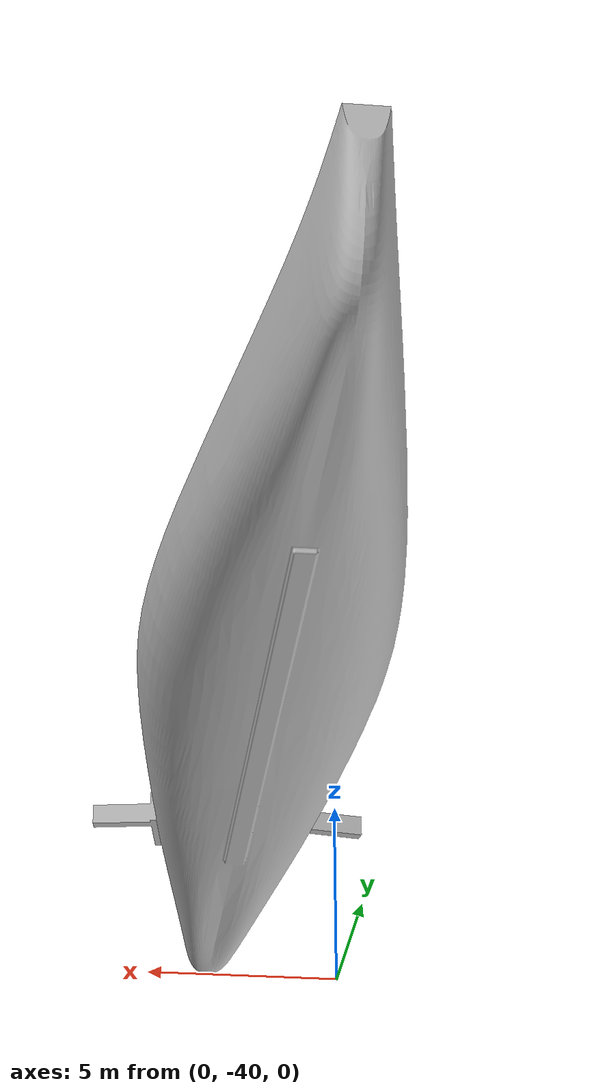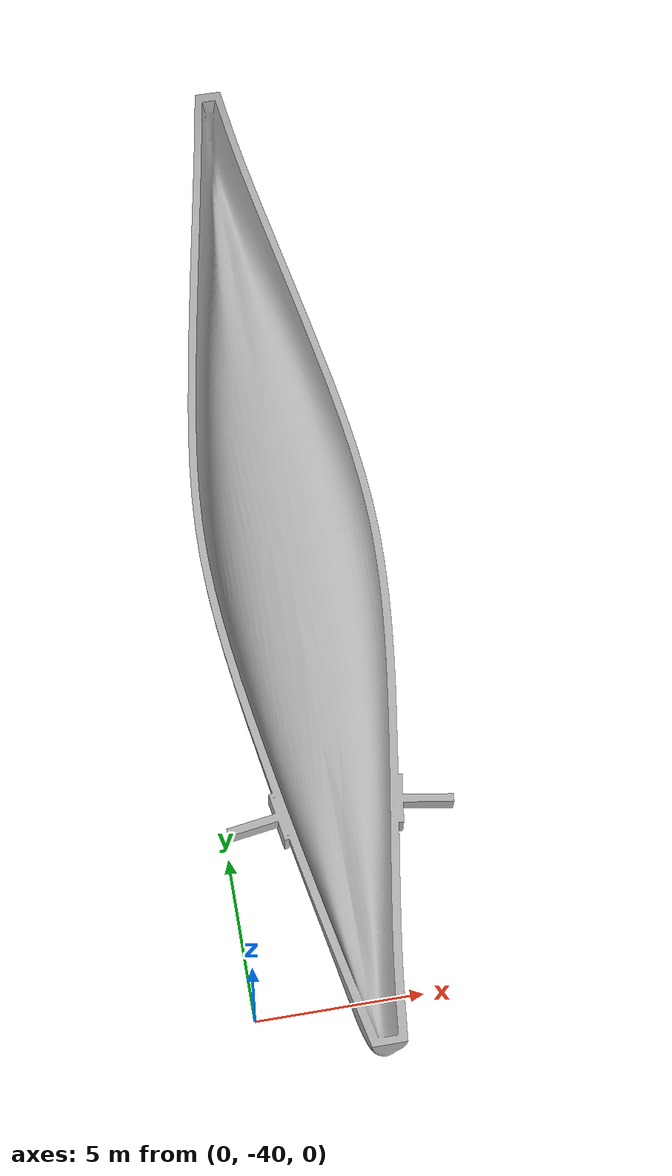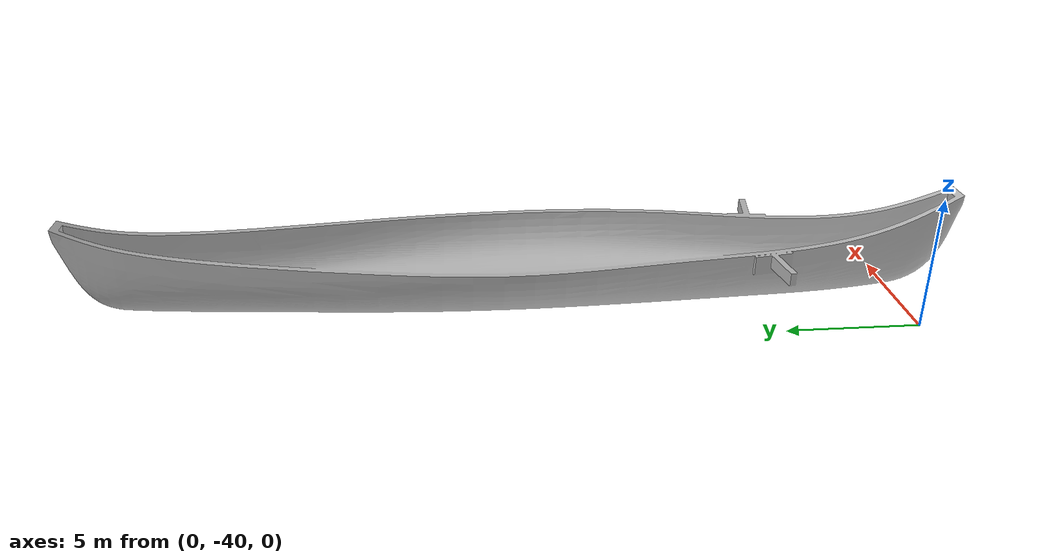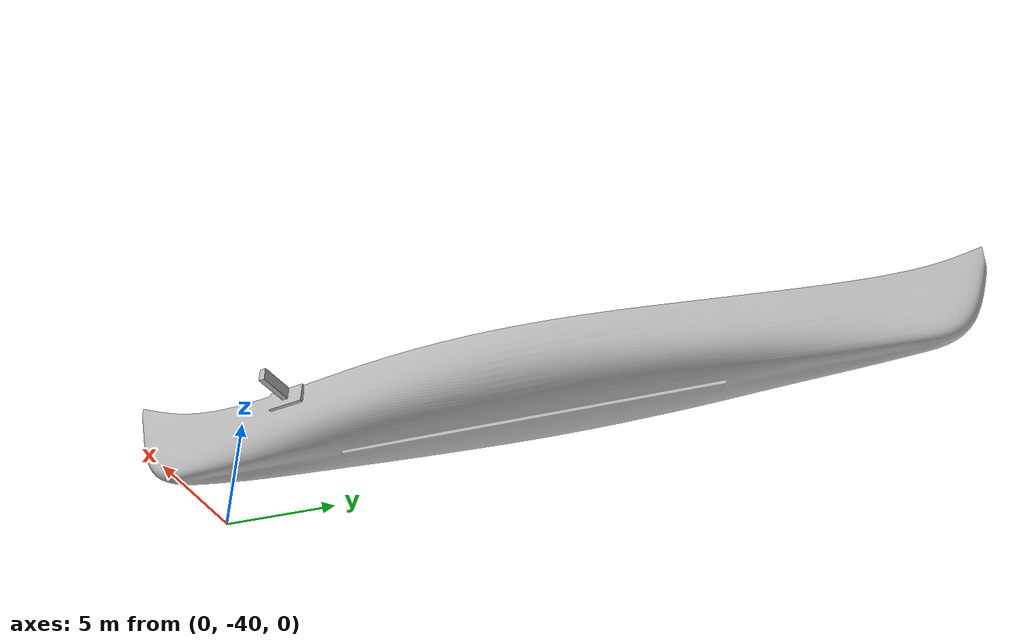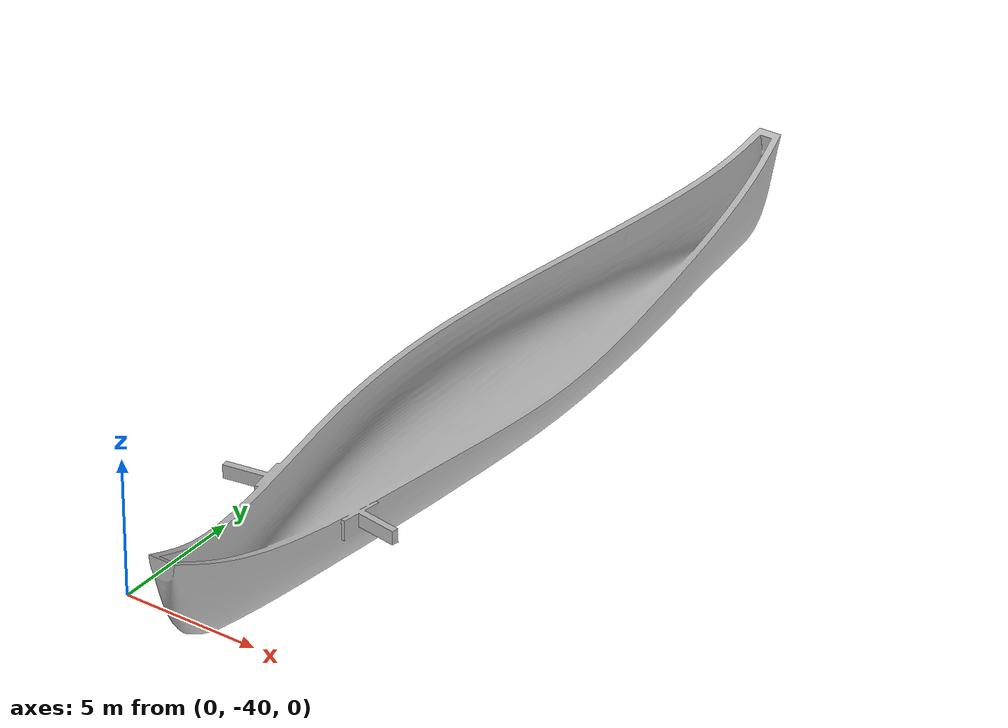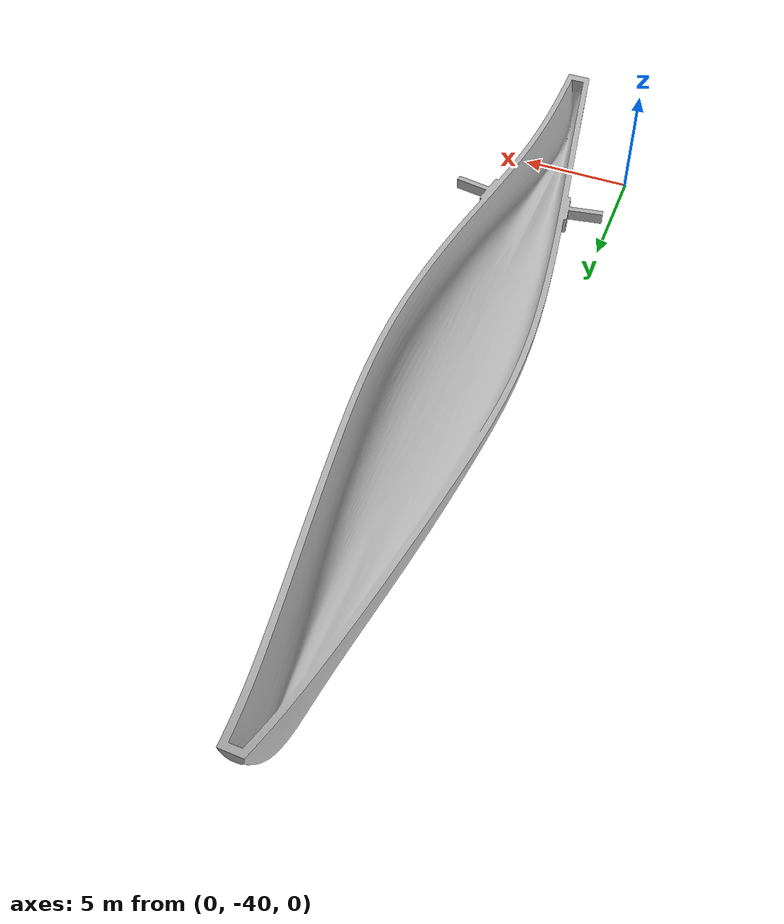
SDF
<?xml version='1.0'?>
<sdf version='1.6'>
  <model name='boat'>
    <static>false</static>
    <plugin
        filename="gz-waves1-hydrodynamics-system"
        name="gz::sim::systems::Hydrodynamics">
    </plugin>
    <link name="base_link_boat">
      <visual name="visual">
        <pose>0 0 0 1.5708 0 0</pose>
        <geometry>
          <mesh>
            <uri>model://Boat/meshes/mesh.stl</uri>
          </mesh>
        </geometry>
      </visual>
      <collision name="collision">
        <pose>0 0 0 0 0 0</pose>
        <geometry>
          <mesh>
            <uri>model://Boat/meshes/mesh.stl</uri>
          </mesh>
        </geometry>
      </collision>
      <inertial>
        <pose>0 0 0 0 0 0</pose>
        <mass>400</mass>
        <inertia>
          <ixx>266</ixx>
          <ixy>0</ixy>
          <iyy>266</iyy>
          <iyz>0</iyz>
          <izz>266</izz>
        </inertia>
      </inertial>
    </link>
  </model>
</sdf>
